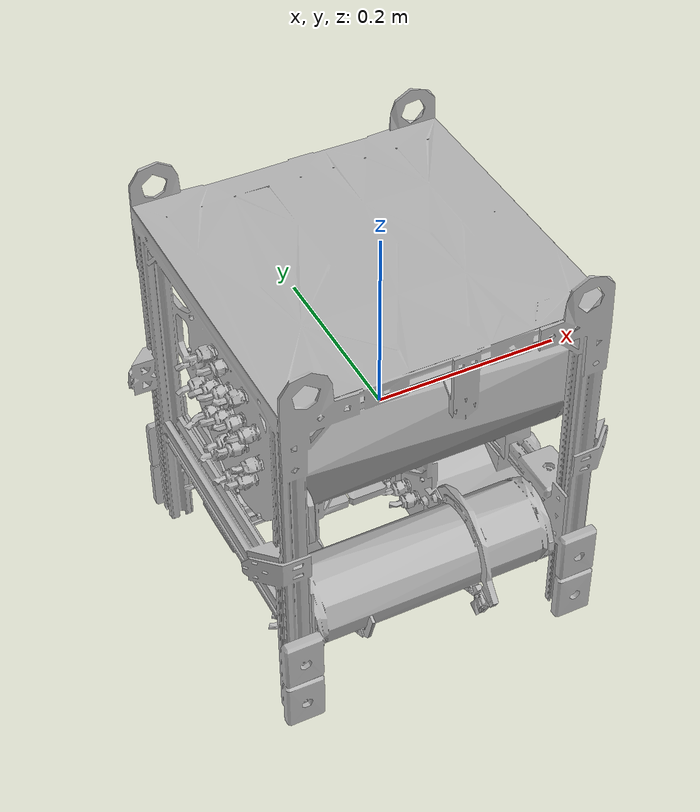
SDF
<?xml version='1.0'?>
<sdf version='1.7'>
  <model name='triton_frame'>
    <link name='frame'>

      <!-- pose relaive to STL file origin, was moved to AUV center using Blender -->
      <!-- Edited for Steelhead Mini Aug 9 2024-->
      <inertial>
        <mass>29.4835</mass>
        <inertia>
          <ixx> 0.548853532</ixx>
          <ixy> 0.000990367</ixy>
          <ixz> 0.007434770</ixz>
          <iyy> 0.725638212</iyy>
          <iyz> 0.045963196</iyz>
          <izz> 1.077000000</izz>
        </inertia>
        <pose>0.1 -0.062 -0.00878 0 -0 0</pose>
      </inertial>

      <!-- Visual Data -->
      <visual name='visual'>
        <pose>0 0 0 0 0 0</pose>
        <geometry>
          <mesh>
            <uri>model://triton_frame/meshes/triton_frame.stl</uri>
            <scale>1 1 1</scale>
          </mesh>
        </geometry>
        <material>
          <lighting>1</lighting>
          <shader type='pixel'/>
        </material>
        <transparency>0</transparency>
        <cast_shadows>1</cast_shadows>
      </visual>

      <gravity>1</gravity>

      <!-- Collision Data-->
      <collision name='collision'>
        <laser_retro>0</laser_retro>
        <max_contacts>10</max_contacts>
        <pose>0 0 0 0 0 0</pose>
        <geometry>
          <mesh>
            <uri>model://triton_frame/meshes/triton_frame.stl</uri>
            <scale>1 1 1</scale>
          </mesh>
        </geometry>
        <!-- Surface Data consists of default value, we should reseach better numbers-->
        <surface>
          <friction>
            <ode>
              <mu>1</mu>
              <mu2>1</mu2>
              <fdir1>0 0 0</fdir1>
              <slip1>0</slip1>
              <slip2>0</slip2>
            </ode>
            <torsional>
              <coefficient>1</coefficient>
              <patch_radius>0</patch_radius>
              <surface_radius>0</surface_radius>
              <use_patch_radius>1</use_patch_radius>
              <ode>
                <slip>0</slip>
              </ode>
            </torsional>
          </friction>
          <bounce>
            <restitution_coefficient>0</restitution_coefficient>
            <threshold>1e+06</threshold>
          </bounce>
          <contact>
            <collide_without_contact>0</collide_without_contact>
            <collide_without_contact_bitmask>1</collide_without_contact_bitmask>
            <collide_bitmask>1</collide_bitmask>
            <ode>
              <soft_cfm>0</soft_cfm>
              <soft_erp>0.2</soft_erp>
              <kp>1e+13</kp>
              <kd>1</kd>
              <max_vel>0.01</max_vel>
              <min_depth>0</min_depth>
            </ode>
            <bullet>
              <split_impulse>1</split_impulse>
              <split_impulse_penetration_threshold>-0.01</split_impulse_penetration_threshold>
              <soft_cfm>0</soft_cfm>
              <soft_erp>0.2</soft_erp>
              <kp>1e+13</kp>
              <kd>1</kd>
            </bullet>
          </contact>
        </surface>
      </collision>

      <sensor type="camera" name="front_camera">
        <pose>0.57 -0.05 0 0 0 0 </pose>
        <update_rate>60</update_rate>
        <visualize>true</visualize>
        <camera name="front">
          <horizontal_fov>1.3962634</horizontal_fov>
          <image>
            <width>640</width>
            <height>480</height>
            <format>R8G8B8</format>
          </image>
          <clip>
            <near>0.02</near>
            <far>300</far>
          </clip>
          <noise>
            <type>gaussian</type>
            <mean>0.0</mean>
            <stddev>0.007</stddev>
          </noise>
        </camera>
        <plugin name="front_camera" filename="libgazebo_ros_camera.so">
          <ros>
            <namespace>/triton/drivers</namespace>
          </ros>
        </plugin>
      </sensor>
      <sensor type="camera" name="down_camera">
        <pose>0.05 -0.17 0 0 1.57 0</pose>
        <update_rate>60</update_rate>
        <visualize>true</visualize>
        <camera name="down">
          <horizontal_fov>1.3962634</horizontal_fov>
          <image>
            <width>640</width>
            <height>480</height>
            <format>R8G8B8</format>
          </image>
          <clip>
            <near>0.02</near>
            <far>300</far>
          </clip>
          <noise>
            <type>gaussian</type>
            <mean>0.0</mean>
            <stddev>0.007</stddev>
          </noise>
        </camera>
        <plugin name="down_camera" filename="libgazebo_ros_camera.so">
          <ros>
            <namespace>/triton/drivers</namespace>
          </ros>
        </plugin>
      </sensor>
      <sensor name="imu_sensor" type="imu">
        <always_on>true</always_on>
        <update_rate>100</update_rate>
        <visualize>true</visualize>
        <topic>imu</topic>
        <plugin filename="libgazebo_ros_imu_sensor.so" name="imu">
          <topicName>imu</topicName>
          <bodyName>imu_link</bodyName>
          <updateRateHZ>100.0</updateRateHZ>
          <gaussianNoise>0</gaussianNoise>
          <xyzOffset>0 0 0</xyzOffset>
          <rpyOffset>0 0 0</rpyOffset>
          <frameName>imu_link</frameName>
          <initialOrientationAsReference>false</initialOrientationAsReference>
          <ros>
            <namespace>/triton/drivers</namespace>
          </ros>
        </plugin>
        <pose>0 0 0 0 0 0</pose>
      </sensor>
    </link>

    <static>0</static>
    <allow_auto_disable>1</allow_auto_disable>
  </model>
</sdf>
